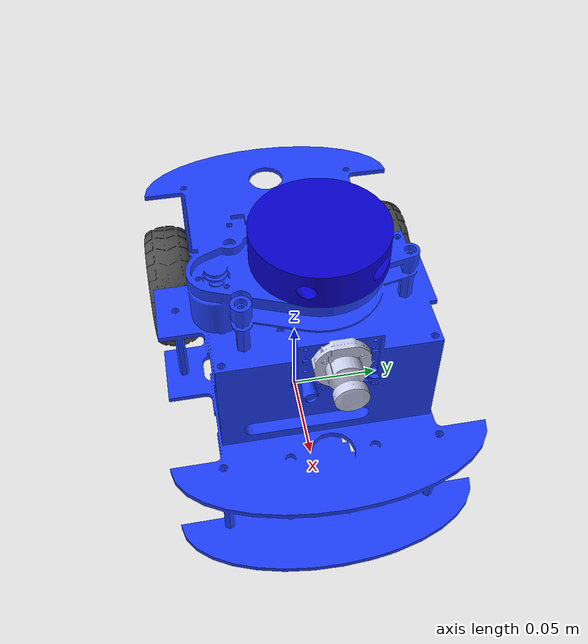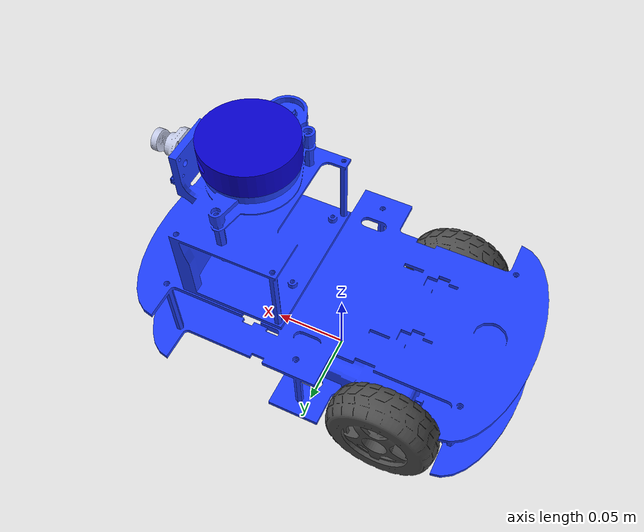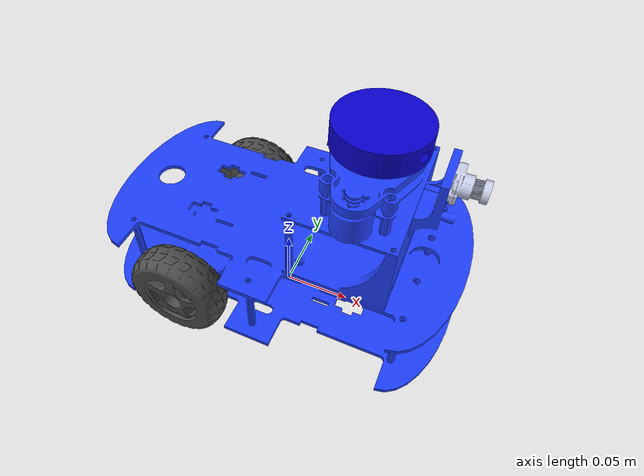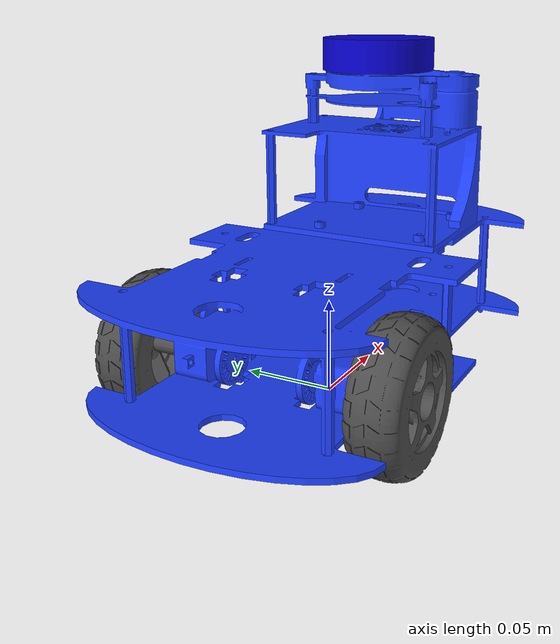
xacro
<?xml version="1.0" encoding="utf-8"?>
<robot
  xmlns:xacro="http://www.ros.org/wiki/xacro"
  name="shell_car">
  <!-- Assembly dimensions in metres. Mesh dimensions are defined by the STL files. -->
  <xacro:property name="robot_length" value="0.2" />
  <xacro:property name="robot_width" value="0.1451" />
  <xacro:property name="robot_height" value="0.18202" />
  <xacro:property name="wheel_x_offset" value="-0.0588" />
  <xacro:property name="wheel_half_track" value="0.07255" />
  <xacro:property name="wheel_z_offset" value="0.03652" />
  <xacro:property name="caster_x_offset" value="0.1" />
  <xacro:property name="caster_z_offset" value="0.005" />
  <xacro:property name="camera_x_offset" value="0.12295" />
  <xacro:property name="camera_z_offset" value="0.15132" />
  <xacro:property name="laser_x_offset" value="0.0575" />
  <xacro:property name="laser_z_offset" value="0.18202" />

  <!-- Link masses in kilograms. -->
  <xacro:property name="base_mass" value="0.39349" />
  <xacro:property name="wheel_mass" value="0.030404" />
  <xacro:property name="caster_mass" value="0.02" />
  <xacro:property name="camera_mass" value="0.03" />
  <xacro:property name="laser_mass" value="0.047104" />
  <xacro:property name="total_robot_mass" value="${base_mass + 2 * wheel_mass + caster_mass + camera_mass + laser_mass}" />
  <link
    name="base_link">
    <inertial>
      <origin
        xyz="0.01623 -0.0013513 0.064696"
        rpy="0 0 0" />
      <mass
        value="${base_mass}" />
      <inertia
        ixx="0.00031692"
        ixy="2.0413E-07"
        ixz="-1.6246E-05"
        iyy="0.00099323"
        iyz="-4.4826E-07"
        izz="0.0012315" />
    </inertial>
    <visual>
      <origin
        xyz="0 0 0"
        rpy="0 0 0" />
      <geometry>
        <mesh filename="package://autonomous_description/meshes/base_link.STL" />
      </geometry>
      <material
        name="">
        <color
          rgba="0.12157 0.25098 1 1" />
      </material>
    </visual>
    <collision>
      <origin
        xyz="0 0 0"
        rpy="0 0 0" />
      <geometry>
        <mesh
          filename="package://autonomous_description/meshes/base_link.STL" />
      </geometry>
    </collision>
  </link>
  <link
    name="left_wheel_link">
    <inertial>
      <origin
        xyz="1.1303E-07 -5.6229E-08 0.0061074"
        rpy="0 0 0" />
      <mass
        value="${wheel_mass}" />
      <inertia
        ixx="1.3605E-05"
        ixy="1.5542E-11"
        ixz="1.9472E-10"
        iyy="1.3605E-05"
        iyz="3.3887E-10"
        izz="2.2623E-05" />
    </inertial>
    <visual>
      <origin
        xyz="0 0 0"
        rpy="0 0 0" />
      <geometry>
        <mesh
          filename="package://autonomous_description/meshes/left_wheel_link.STL" />
      </geometry>
      <material
        name="">
        <color
          rgba="0.29804 0.29804 0.29804 1" />
      </material>
    </visual>
    <collision>
      <origin
        xyz="0 0 0"
        rpy="0 0 0" />
      <geometry>
        <mesh
          filename="package://autonomous_description/meshes/left_wheel_link.STL" />
      </geometry>
    </collision>
  </link>
  <joint
    name="left_wheel_joint"
    type="continuous">
    <origin
      xyz="${wheel_x_offset} ${wheel_half_track} ${wheel_z_offset}"
      rpy="1.5708 0 0" />
    <parent
      link="base_link" />
    <child
      link="left_wheel_link" />
    <axis
      xyz="0 0 1" />
    <dynamics
      damping="0.1"
      friction="0.1" />
  </joint>
  <link
    name="right_wheel_link">
    <inertial>
      <origin
        xyz="1.632E-07 4.0012E-08 -0.0061075"
        rpy="0 0 0" />
      <mass
        value="${wheel_mass}" />
      <inertia
        ixx="1.3605E-05"
        ixy="-2.2023E-12"
        ixz="-1.4202E-10"
        iyy="1.3605E-05"
        iyz="-3.6485E-10"
        izz="2.2623E-05" />
    </inertial>
    <visual>
      <origin
        xyz="0 0 0"
        rpy="0 0 0" />
      <geometry>
        <mesh
          filename="package://autonomous_description/meshes/right_wheel_link.STL" />
      </geometry>
      <material
        name="">
        <color
          rgba="0.29804 0.29804 0.29804 1" />
      </material>
    </visual>
    <collision>
      <origin
        xyz="0 0 0"
        rpy="0 0 0" />
      <geometry>
        <mesh
          filename="package://autonomous_description/meshes/right_wheel_link.STL" />
      </geometry>
    </collision>
  </link>
  <joint
    name="right_wheel_joint"
    type="continuous">
    <origin
      xyz="${wheel_x_offset} -${wheel_half_track} ${wheel_z_offset}"
      rpy="1.5708 0 0" />
    <parent
      link="base_link" />
    <child
      link="right_wheel_link" />
    <axis
      xyz="0 0 1" />
    <dynamics
      damping="0.1"
      friction="0.1" />
  </joint>
  <link
    name="caster_link">
    <inertial>
      <origin
        xyz="0 -5.7429E-20 -3.4694E-18"
        rpy="0 0 0" />
      <mass
        value="${caster_mass}" />
      <inertia
        ixx="1E-05"
        ixy="6.2039E-25"
        ixz="-9.4409E-39"
        iyy="1E-05"
        iyz="0"
        izz="1E-05" />
    </inertial>
    <visual>
      <origin
        xyz="0 0 0"
        rpy="0 0 0" />
      <geometry>
        <mesh
          filename="package://autonomous_description/meshes/caster_link.STL" />
      </geometry>
      <material
        name="">
        <color
          rgba="0.79216 0.81961 0.93333 1" />
      </material>
    </visual>
    <collision>
      <origin
        xyz="0 0 0"
        rpy="0 0 0" />
      <geometry>
        <mesh
          filename="package://autonomous_description/meshes/caster_link.STL" />
      </geometry>
    </collision>
  </link>
  <joint
    name="caster_joint"
    type="fixed">
    <origin
      xyz="${caster_x_offset} 0 ${caster_z_offset}"
      rpy="0 0 0" />
    <parent
      link="base_link" />
    <child
      link="caster_link" />
    <axis
      xyz="0 0 1" />
  </joint>
  <link
    name="camera_link">
    <inertial>
      <origin
        xyz="-0.013228 -3.2396E-06 0.00014534"
        rpy="0 0 0" />

      <inertia
        ixx="1E-05"
        ixy="-6.5021E-11"
        ixz="1.6041E-09"
        iyy="1E-05"
        iyz="-3.0147E-10"
        izz="1E-05" />
    </inertial>
    <visual>
      <origin
        xyz="0 0 0"
        rpy="0 0 0" />
      <geometry>
        <mesh
          filename="package://autonomous_description/meshes/camera_link.STL" />
      </geometry>
      <material
        name="">
        <color
          rgba="0.79216 0.81961 0.93333 1" />
      </material>
    </visual>
    <collision>
      <origin
        xyz="0 0 0"
        rpy="0 0 0" />
      <geometry>
        <mesh
          filename="package://autonomous_description/meshes/camera_link.STL" />
      </geometry>
    </collision>
  </link>
  <joint
    name="camera_joint"
    type="fixed">
    <origin
      xyz="${camera_x_offset} 0 ${camera_z_offset}"
      rpy="0 0 0" />
    <parent
      link="base_link" />
    <child
      link="camera_link" />
    <axis
      xyz="0 0 0" />
  </joint>
  <link
    name="laser_link">
    <inertial>
      <origin
        xyz="-0.00047505 -0.00025388 -0.0085532"
        rpy="0 0 0" />

      <inertia
        ixx="1.1584E-05"
        ixy="1.4579E-07"
        ixz="-4.4049E-09"
        iyy="1.1566E-05"
        iyz="-2.3537E-09"
        izz="2.0794E-05" />
    </inertial>
    <visual>
      <origin
        xyz="0 0 0"
        rpy="0 0 0" />
      <geometry>
        <mesh
          filename="package://autonomous_description/meshes/laser_link.STL" />
      </geometry>
      <material
        name="">
        <color
          rgba="0.027451 0 0.81176 1" />
      </material>
    </visual>
    <collision>
      <origin
        xyz="0 0 0"
        rpy="0 0 0" />
      <geometry>
        <mesh
          filename="package://autonomous_description/meshes/laser_link.STL" />
      </geometry>
    </collision>
  </link>
  <joint
    name="laser_joint"
    type="fixed">
    <origin
      xyz="${laser_x_offset} 0 ${laser_z_offset}"
      rpy="0 0 0" />
    <parent
      link="base_link" />
    <child
      link="laser_link" />
    <axis
      xyz="0 0 0" />
  </joint>
</robot>
